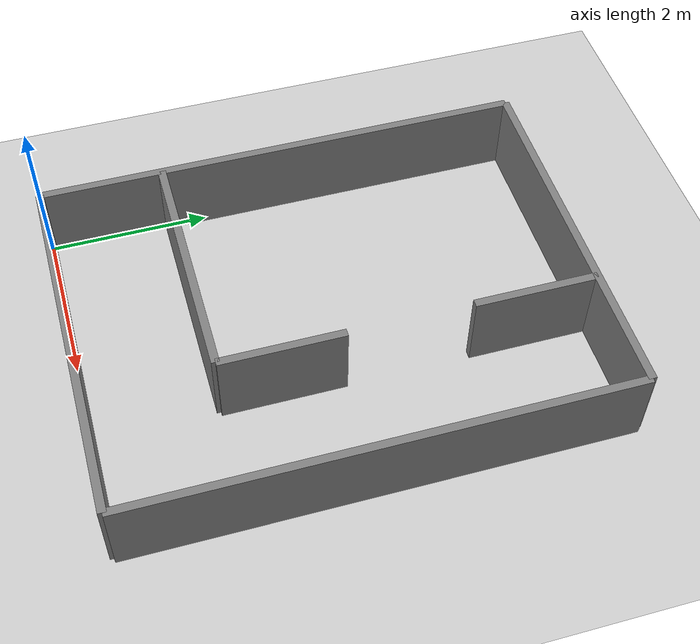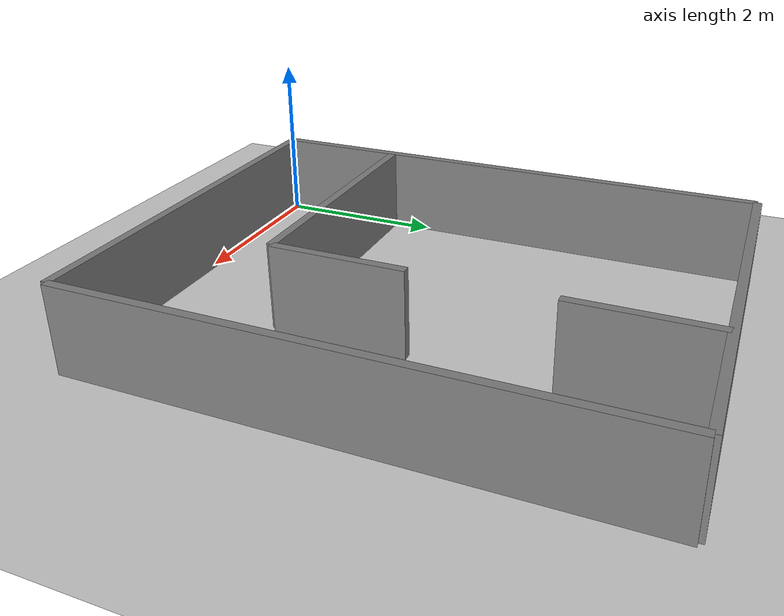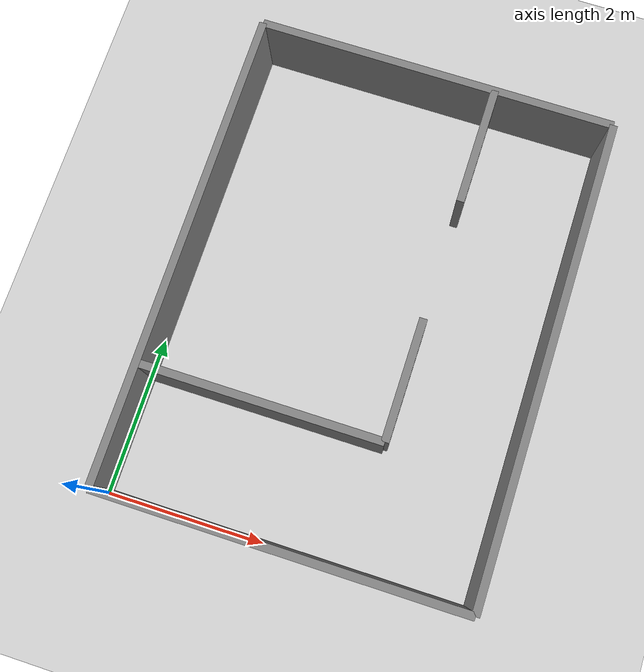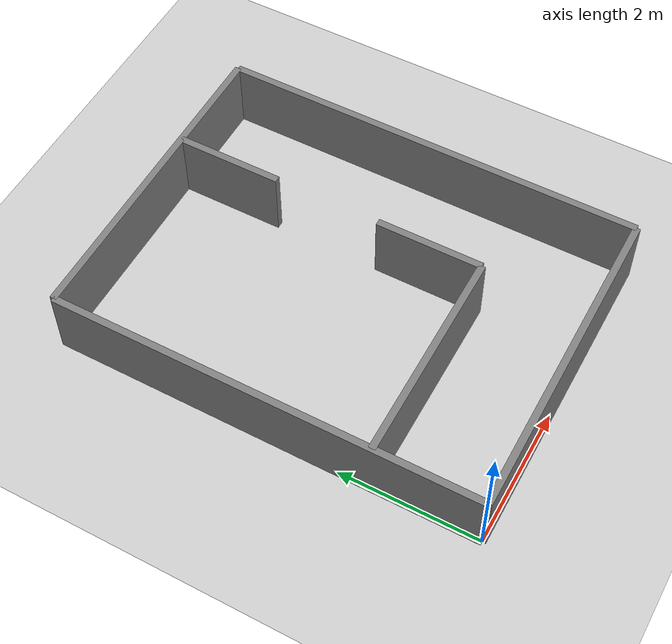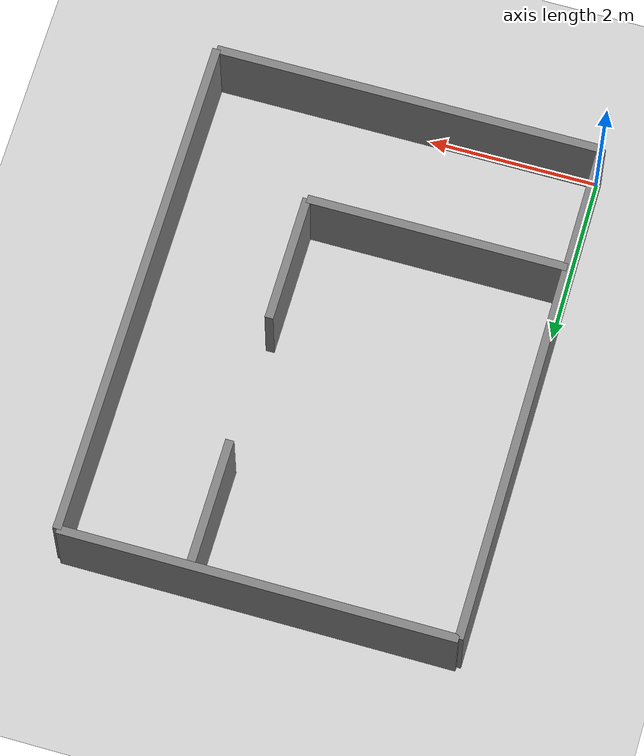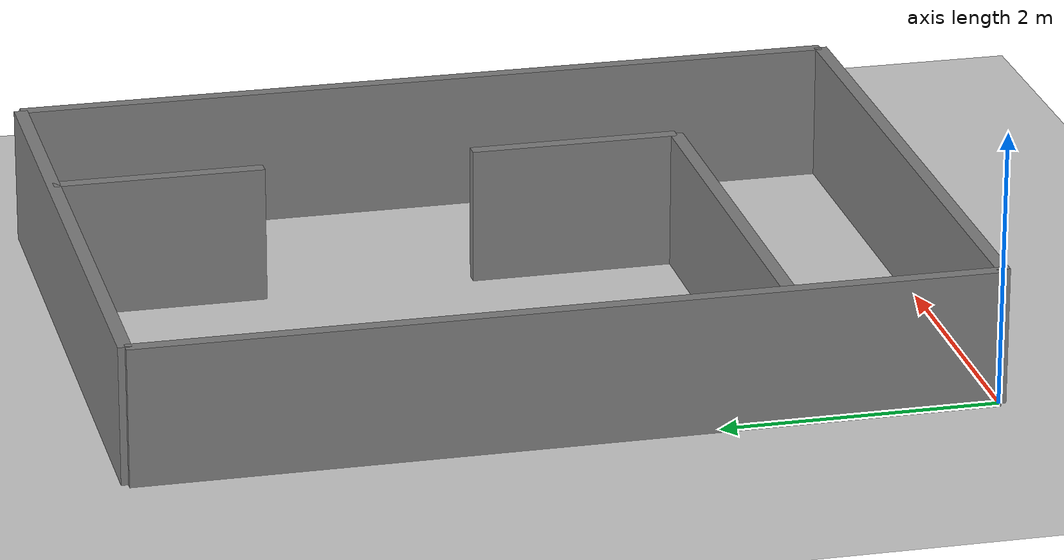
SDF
<sdf version='1.10'>
  <world name='test_world'>
    <physics name='1ms' type='ignored'>
      <max_step_size>0.001</max_step_size>
      <real_time_factor>1</real_time_factor>
      <real_time_update_rate>1000</real_time_update_rate>
    </physics>
    <plugin name='gz::sim::systems::Physics' filename='gz-sim-physics-system'/>
    <plugin name='gz::sim::systems::UserCommands' filename='gz-sim-user-commands-system'/>
    <plugin name='gz::sim::systems::SceneBroadcaster' filename='gz-sim-scene-broadcaster-system'/>
    <plugin name='gz::sim::systems::Contact' filename='gz-sim-contact-system'/>
    <gravity>0 0 -9.8000000000000007</gravity>
    <magnetic_field>5.5644999999999998e-06 2.2875799999999999e-05 -4.2388400000000002e-05</magnetic_field>
    <atmosphere type='adiabatic'/>
    <scene>
      <ambient>0.400000006 0.400000006 0.400000006 1</ambient>
      <background>0.699999988 0.699999988 0.699999988 1</background>
      <shadows>true</shadows>
    </scene>
    <model name='ground_plane'>
      <static>true</static>
      <link name='link'>
        <collision name='collision'>
          <geometry>
            <plane>
              <normal>0 0 1</normal>
              <size>100 100</size>
            </plane>
          </geometry>
          <surface>
            <friction>
              <ode/>
            </friction>
            <bounce/>
            <contact/>
          </surface>
        </collision>
        <visual name='visual'>
          <geometry>
            <plane>
              <normal>0 0 1</normal>
              <size>100 100</size>
            </plane>
          </geometry>
          <material>
            <ambient>0.800000012 0.800000012 0.800000012 1</ambient>
            <diffuse>0.800000012 0.800000012 0.800000012 1</diffuse>
            <specular>0.800000012 0.800000012 0.800000012 1</specular>
          </material>
        </visual>
        <pose>0 0 0 0 0 0</pose>
        <inertial>
          <pose>0 0 0 0 0 0</pose>
          <mass>1</mass>
          <inertia>
            <ixx>1</ixx>
            <ixy>0</ixy>
            <ixz>0</ixz>
            <iyy>1</iyy>
            <iyz>0</iyz>
            <izz>1</izz>
          </inertia>
        </inertial>
        <enable_wind>false</enable_wind>
      </link>
      <pose>0 0 0 0 0 0</pose>
      <self_collide>false</self_collide>
    </model>
    <model name="project1_walls">
      <static>true</static>

      <!-- OUTER BOUNDARY: 4.572m wide x 6.096m long -->
      <link name="outer_west">
        <pose>0 3.048 0.5 0 0 0</pose>
        <visual name="v"><geometry><box><size>0.1 6.096 1.0</size></box></geometry><material><ambient>0.5 0.5 0.5 1</ambient></material></visual>
        <collision name="c"><geometry><box><size>0.1 6.096 1.0</size></box></geometry></collision>
      </link>
      <link name="outer_north">
        <pose>2.286 6.096 0.5 0 0 0</pose>
        <visual name="v"><geometry><box><size>4.572 0.1 1.0</size></box></geometry><material><ambient>0.5 0.5 0.5 1</ambient></material></visual>
        <collision name="c"><geometry><box><size>4.572 0.1 1.0</size></box></geometry></collision>
      </link>
      <link name="outer_east">
        <pose>4.572 3.048 0.5 0 0 0</pose>
        <visual name="v"><geometry><box><size>0.1 6.096 1.0</size></box></geometry><material><ambient>0.5 0.5 0.5 1</ambient></material></visual>
        <collision name="c"><geometry><box><size>0.1 6.096 1.0</size></box></geometry></collision>
      </link>
      <link name="outer_south">
        <pose>2.286 0 0.5 0 0 0</pose>
        <visual name="v"><geometry><box><size>4.572 0.1 1.0</size></box></geometry><material><ambient>0.5 0.5 0.5 1</ambient></material></visual>
        <collision name="c"><geometry><box><size>4.572 0.1 1.0</size></box></geometry></collision>
      </link>

      <!-- INNER ROOM: 3.048m wide x 4.572m long (Top-Left) -->
      <!-- Inner South Wall (Separating the bottom hallway) -->
      <link name="inner_south">
        <pose>1.524 1.524 0.5 0 0 0</pose>
        <visual name="v"><geometry><box><size>3.048 0.1 1.0</size></box></geometry><material><ambient>0.5 0.5 0.5 1</ambient></material></visual>
        <collision name="c"><geometry><box><size>3.048 0.1 1.0</size></box></geometry></collision>
      </link>

      <!-- Inner East Wall (Separating the right hallway, with center door) -->
      <!-- Bottom segment (1.524m length) -->
      <link name="inner_east_bottom">
        <pose>3.048 2.286 0.5 0 0 0</pose>
        <visual name="v"><geometry><box><size>0.1 1.524 1.0</size></box></geometry><material><ambient>0.5 0.5 0.5 1</ambient></material></visual>
        <collision name="c"><geometry><box><size>0.1 1.524 1.0</size></box></geometry></collision>
      </link>
      <!-- Top segment (1.524m length) -->
      <!-- This leaves a perfect 1.524m gap in the exact center of the 4.572m wall -->
      <link name="inner_east_top">
        <pose>3.048 5.334 0.5 0 0 0</pose>
        <visual name="v"><geometry><box><size>0.1 1.524 1.0</size></box></geometry><material><ambient>0.5 0.5 0.5 1</ambient></material></visual>
        <collision name="c"><geometry><box><size>0.1 1.524 1.0</size></box></geometry></collision>
      </link>
    </model>
    <light name='sun' type='directional'>
      <pose>0 0 10 0 0 0</pose>
      <cast_shadows>true</cast_shadows>
      <intensity>1</intensity>
      <direction>-0.5 0.10000000000000001 -0.90000000000000002</direction>
      <diffuse>0.800000012 0.800000012 0.800000012 1</diffuse>
      <specular>0.200000003 0.200000003 0.200000003 1</specular>
      <attenuation>
        <range>1000</range>
        <linear>0.01</linear>
        <constant>0.90000000000000002</constant>
        <quadratic>0.001</quadratic>
      </attenuation>
      <spot>
        <inner_angle>0</inner_angle>
        <outer_angle>0</outer_angle>
        <falloff>0</falloff>
      </spot>
    </light>
  </world>
</sdf>
